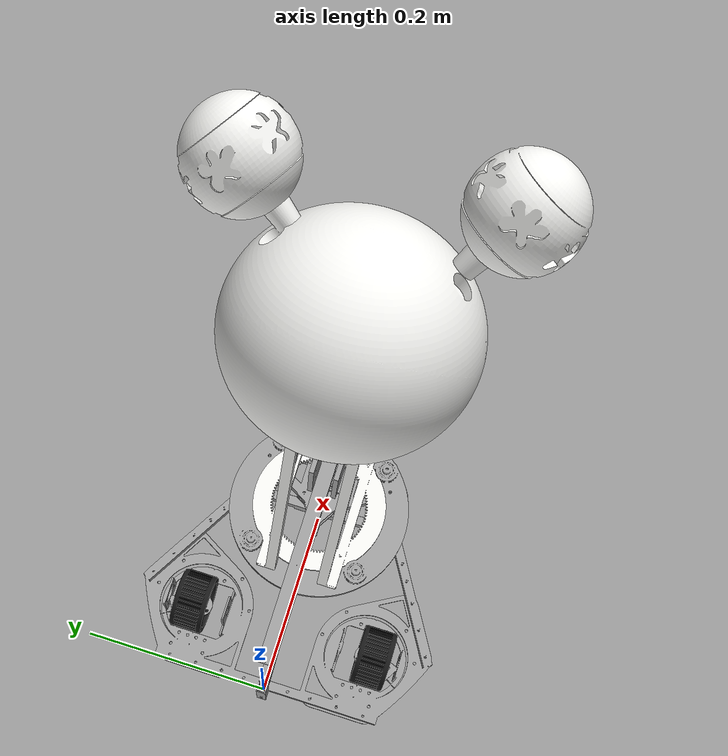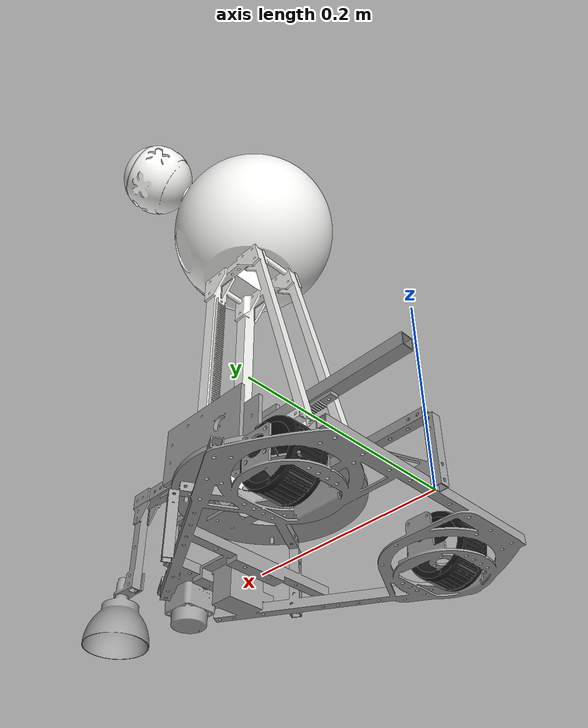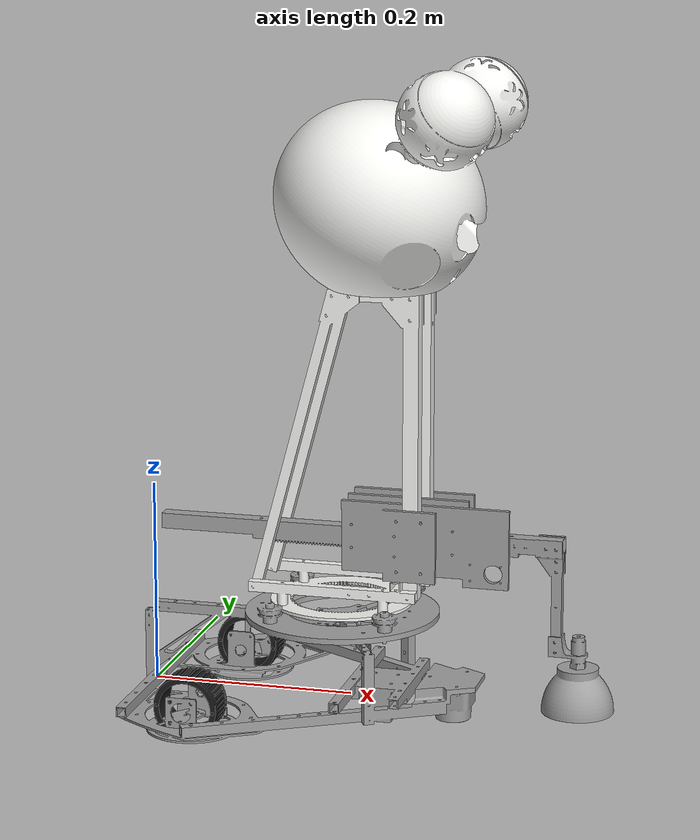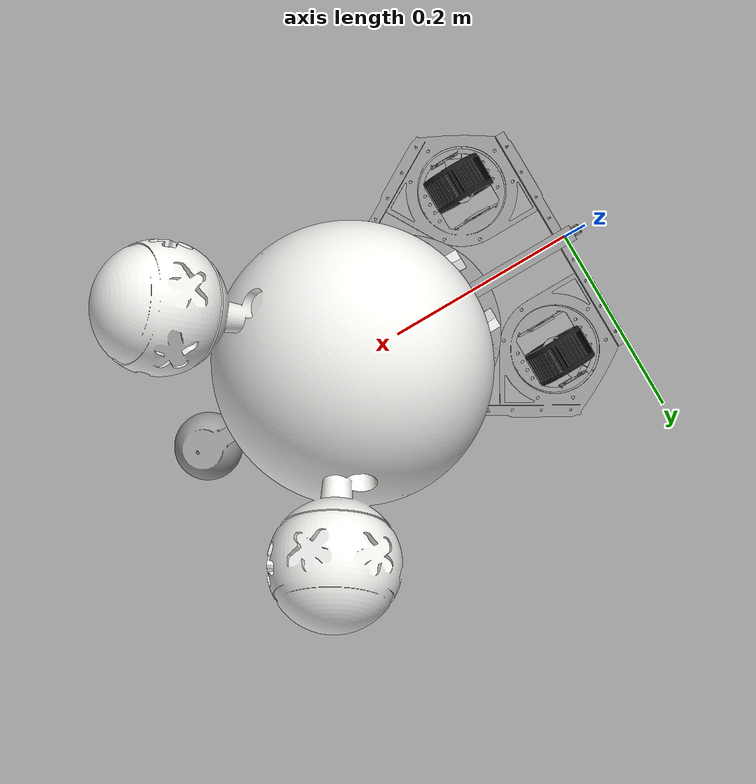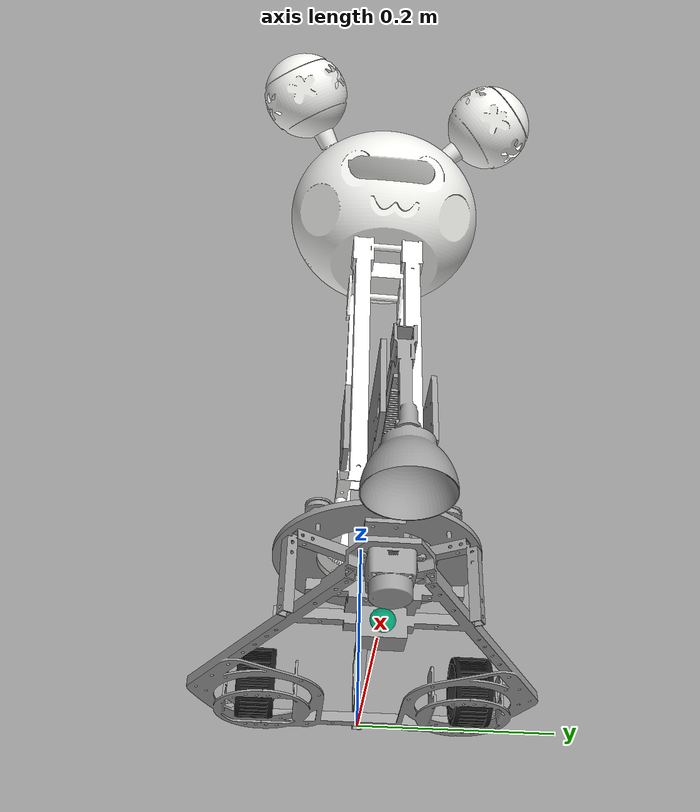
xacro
<?xml version="1.0" ?>
<robot name="utan_urdf" xmlns:xacro="http://www.ros.org/wiki/xacro">

<xacro:include filename="$(find rere_daisha_ros)/urdf/materials.xacro" />
<xacro:include filename="$(find rere_daisha_ros)/urdf/utan_urdf.trans" />

<link name="base_root"/>

<joint name="base_root_to_base_link" type="fixed">
  <origin xyz="0 0 0" rpy="0 0 0"/>
  <parent link="base_root"/>
  <child link="base_link"/>
</joint>

<link name="base_link">
  <inertial>
    <origin xyz="0.09520162806918002 0.0005187471017515448 0.01932446245336333" rpy="0 0 0"/>
    <mass value="3.65763738670461"/>
    <inertia ixx="0.033307" iyy="0.019117" izz="0.046561" ixy="0.00029" iyz="6e-06" ixz="0.000904"/>
  </inertial>
  <visual>
    <origin xyz="0 0 0" rpy="0 0 0"/>
    <geometry>
      <mesh filename="package://rere_daisha_ros/meshes/base_link_utan.stl" scale="0.001 0.001 0.001"/>
    </geometry>
    <material name="opaque160160160"/>
  </visual>
  <collision>
    <origin xyz="0 0 0" rpy="0 0 0"/>
    <geometry>
      <mesh filename="package://rere_daisha_ros/meshes/base_link_utan.stl" scale="0.001 0.001 0.001"/>
    </geometry>
  </collision>
</link>

<link name="turn_table_v2_1">
  <inertial>
    <origin xyz="0.09802654893156955 0.00016193590845080152 -0.006281031795882117" rpy="0 0 0"/>
    <mass value="0.23068331433441983"/>
    <inertia ixx="0.000458" iyy="0.000536" izz="0.000862" ixy="-1e-06" iyz="1e-06" ixz="4.8e-05"/>
  </inertial>
  <visual>
    <origin xyz="-0.11 -0.0 -0.08" rpy="0 0 0"/>
    <geometry>
      <mesh filename="package://rere_daisha_ros/meshes/turn_table_v2_1.stl" scale="0.001 0.001 0.001"/>
    </geometry>
    <material name="opaque160160160"/>
  </visual>
  <collision>
    <origin xyz="-0.11 -0.0 -0.08" rpy="0 0 0"/>
    <geometry>
      <mesh filename="package://rere_daisha_ros/meshes/turn_table_v2_1.stl" scale="0.001 0.001 0.001"/>
    </geometry>
  </collision>
</link>

<link name="arm_frame_v2_1">
  <inertial>
    <origin xyz="0.02744889021645841 0.0012818596317239104 0.15687901625587758" rpy="0 0 0"/>
    <mass value="0.2699419306159649"/>
    <inertia ixx="0.003631" iyy="0.004135" izz="0.000986" ixy="-1.3e-05" iyz="-4e-06" ixz="-0.000386"/>
  </inertial>
  <visual>
    <origin xyz="-0.19163 -0.0 -0.0855" rpy="0 0 0"/>
    <geometry>
      <mesh filename="package://rere_daisha_ros/meshes/arm_frame_v2_1.stl" scale="0.001 0.001 0.001"/>
    </geometry>
    <material name="abs"/>
  </visual>
  <collision>
    <origin xyz="-0.19163 -0.0 -0.0855" rpy="0 0 0"/>
    <geometry>
      <mesh filename="package://rere_daisha_ros/meshes/arm_frame_v2_1.stl" scale="0.001 0.001 0.001"/>
    </geometry>
  </collision>
</link>

<link name="wheel_v1_1">
  <inertial>
    <origin xyz="3.191891195797325e-16 0.017700000000000354 3.4867941867133823e-16" rpy="0 0 0"/>
    <mass value="0.28418559373662294"/>
    <inertia ixx="0.000148" iyy="0.000235" izz="0.000148" ixy="-0.0" iyz="-0.0" ixz="-0.0"/>
  </inertial>
  <visual>
    <origin xyz="-0.0675 0.12025 -0.012" rpy="0 0 0"/>
    <geometry>
      <mesh filename="package://rere_daisha_ros/meshes/wheel_v1_1.stl" scale="0.001 0.001 0.001"/>
    </geometry>
    <material name="opaque252525"/>
  </visual>
  <collision>
    <origin xyz="0 0.0177 0" rpy="1.57 0 0"/>
    <geometry>
      <cylinder radius="0.032" length="0.0354"/>
    </geometry>
  </collision>
</link>

<link name="wheel_v1_2">
  <inertial>
    <origin xyz="6.938893903907228e-17 -0.017700000000000132 1.5317608292875207e-15" rpy="0 0 0"/>
    <mass value="0.28418559373662294"/>
    <inertia ixx="0.000148" iyy="0.000235" izz="0.000148" ixy="0.0" iyz="-0.0" ixz="0.0"/>
  </inertial>
  <visual>
    <origin xyz="-0.0675 -0.12025 -0.012" rpy="0 0 0"/>
    <geometry>
      <mesh filename="package://rere_daisha_ros/meshes/wheel_v1_2.stl" scale="0.001 0.001 0.001"/>
    </geometry>
    <material name="opaque252525"/>
  </visual>
  <collision>
    <origin xyz="0 -0.0177 0" rpy="1.57 0 0"/>
    <geometry>
      <cylinder radius="0.032" length="0.0354"/>
    </geometry>
  </collision>
</link>

<link name="ldlidar_v1_1">
  <inertial>
    <origin xyz="0.023362666392759468 -7.575696337304393e-05 -0.011901663161928948" rpy="0 0 0"/>
    <mass value="0.1108077083765899"/>
    <inertia ixx="3e-05" iyy="2.9e-05" izz="3.4e-05" ixy="0.0" iyz="0.0" ixz="0.0"/>
  </inertial>
  <visual>
    <origin xyz="-0.279945 0.0 -0.019" rpy="0 0 0"/>
    <geometry>
      <mesh filename="package://rere_daisha_ros/meshes/ldlidar_v1_1.stl" scale="0.001 0.001 0.001"/>
    </geometry>
    <material name="_"/>
  </visual>
  <collision>
    <origin xyz="-0.279945 0.0 -0.019" rpy="0 0 0"/>
    <geometry>
      <mesh filename="package://rere_daisha_ros/meshes/ldlidar_v1_1.stl" scale="0.001 0.001 0.001"/>
    </geometry>
  </collision>
</link>

<link name="vertical_arm_frame_v2_1">
  <inertial>
    <origin xyz="-0.005753565521876891 -0.009271128275171311 0.051223551297241085" rpy="0 0 0"/>
    <mass value="0.5746828614494589"/>
    <inertia ixx="0.00066" iyy="0.001395" izz="0.001573" ixy="0.000288" iyz="-3.1e-05" ixz="0.000122"/>
  </inertial>
  <visual>
    <origin xyz="-0.27463 -0.0175 -0.11" rpy="0 0 0"/>
    <geometry>
      <mesh filename="package://rere_daisha_ros/meshes/vertical_arm_frame_v2_1.stl" scale="0.001 0.001 0.001"/>
    </geometry>
    <material name="_"/>
  </visual>
  <collision>
    <origin xyz="-0.27463 -0.0175 -0.11" rpy="0 0 0"/>
    <geometry>
      <mesh filename="package://rere_daisha_ros/meshes/vertical_arm_frame_v2_1.stl" scale="0.001 0.001 0.001"/>
    </geometry>
  </collision>
</link>

<link name="arm_edge_v2_1">
  <inertial>
    <origin xyz="-0.06652395631690738 0.009860556578744007 -0.07655211829948619" rpy="0 0 0"/>
    <mass value="0.12264148012210885"/>
    <inertia ixx="0.000396" iyy="0.002509" izz="0.002131" ixy="2e-06" iyz="-1e-06" ixz="0.000624"/>
  </inertial>
  <visual>
    <origin xyz="-0.35963 0.0075 -0.2" rpy="0 0 0"/>
    <geometry>
      <mesh filename="package://rere_daisha_ros/meshes/arm_edge_v2_1.stl" scale="0.001 0.001 0.001"/>
    </geometry>
    <material name="opaque160160160"/>
  </visual>
  <collision>
    <origin xyz="-0.35963 0.0075 -0.2" rpy="0 0 0"/>
    <geometry>
      <mesh filename="package://rere_daisha_ros/meshes/arm_edge_v2_1.stl" scale="0.001 0.001 0.001"/>
    </geometry>
  </collision>
</link>

<link name="utan_figure_v2_1">
  <inertial>
    <origin xyz="0.03326863178942485 -0.02596137626057443 0.0974308443997331" rpy="0 0 0"/>
    <mass value="0.3245235558924718"/>
    <inertia ixx="0.002786" iyy="0.002186" izz="0.002584" ixy="2.1e-05" iyz="1.1e-05" ixz="-0.000278"/>
  </inertial>
  <visual>
    <origin xyz="-0.23463 -0.0275 -0.41" rpy="0 0 0"/>
    <geometry>
      <mesh filename="package://rere_daisha_ros/meshes/utan_figure_v2_1.stl" scale="0.001 0.001 0.001"/>
    </geometry>
    <material name="abs"/>
  </visual>
  <collision>
    <origin xyz="-0.23463 -0.0275 -0.41" rpy="0 0 0"/>
    <geometry>
      <mesh filename="package://rere_daisha_ros/meshes/utan_figure_v2_1.stl" scale="0.001 0.001 0.001"/>
    </geometry>
  </collision>
</link>

<link name="caster_ball">
  <inertial>
    <mass value="0.05"/>
    <inertia ixx="1e-5" iyy="1e-5" izz="1e-5" ixy="0" ixz="0" iyz="0"/>
  </inertial>
  <collision>
    <origin xyz="0 0 0" rpy="0 0 0"/>
    <geometry>
      <sphere radius="0.015"/>
    </geometry>
  </collision>
  <visual>
    <origin xyz="0 0 0" rpy="0 0 0"/>
    <geometry>
      <sphere radius="0.015"/>
    </geometry>
  </visual>
</link>

<link name="lidar_link">
</link>

<joint name="rigit1" type="fixed">
  <origin xyz="0.11 0.0 0.08" rpy="0 0 0"/>
  <parent link="base_link"/>
  <child link="turn_table_v2_1"/>
</joint>

<joint name="arm_yaw" type="revolute">
  <origin xyz="0.08163 0.0 0.0055" rpy="0 0 0"/>
  <parent link="turn_table_v2_1"/>
  <child link="arm_frame_v2_1"/>
  <axis xyz="-0.0 0.0 1.0"/>
  <limit upper="0.872665" lower="-0.872665" effort="100" velocity="100"/>
</joint>

<joint name="wheel_right" type="continuous">
  <origin xyz="0.0675 -0.12025 0.012" rpy="0 0 0"/>
  <parent link="base_link"/>
  <child link="wheel_v1_1"/>
  <axis xyz="0.0 1.0 -0.0"/>
</joint>

<joint name="wheel_left" type="continuous">
  <origin xyz="0.0675 0.12025 0.012" rpy="0 0 0"/>
  <parent link="base_link"/>
  <child link="wheel_v1_2"/>
  <axis xyz="0.0 1.0 0.0"/>
</joint>

<joint name="lidar_joint" type="fixed">
  <origin xyz="0.279945 0.0 0.019" rpy="0 0 0"/>
  <parent link="base_link"/>
  <child link="ldlidar_v1_1"/>
</joint>

<joint name="arm_vertical" type="prismatic">
  <origin xyz="0.083 0.015 0.0245" rpy="0 0 0"/>
  <parent link="arm_frame_v2_1"/>
  <child link="vertical_arm_frame_v2_1"/>
  <axis xyz="0.0 -0.0 1.0"/>
  <limit upper="0.17" lower="-0.02" effort="1000" velocity="100"/>
</joint>

<joint name="arm_horizontal" type="prismatic">
  <origin xyz="0.085 -0.025 0.09" rpy="0 0 0"/>
  <parent link="vertical_arm_frame_v2_1"/>
  <child link="arm_edge_v2_1"/>
  <axis xyz="1.0 0.0 -0.0"/>
  <limit upper="0.085" lower="0.0" effort="100" velocity="100"/>
</joint>

<joint name="utan" type="fixed">
  <origin xyz="0.043 0.0275 0.3245" rpy="0 0 0"/>
  <parent link="arm_frame_v2_1"/>
  <child link="utan_figure_v2_1"/>
</joint>

<joint name="lidar_joint_true" type="fixed">
  <origin xyz="0.017 0 -0.0291" rpy="3.14159 0 0"/>
  <parent link="ldlidar_v1_1"/>
  <child link="lidar_link"/>
</joint>

<joint name="caster_ball_joint" type="fixed">
  <!-- ここは「地面に接する高さ」になるよう調整 -->
  <origin xyz="0.235484 0 -0.005" rpy="0 0 0"/>
  <parent link="base_link"/>
  <child link="caster_ball"/>
</joint>

<gazebo reference="lidar_link">
  <sensor type="gpu_lidar" name="lidar_sensor">
    <ignition_frame_id>lidar_link</ignition_frame_id>
    <topic>/ldlidar_node/scan</topic>
    <alwaysOn>1</alwaysOn>
    <visualize>true</visualize>
    <update_rate>10</update_rate>
    <ray>
      <scan>
        <horizontal>
          <samples>450</samples>
          <min_angle>-3.14</min_angle>
          <max_angle> 3.14</max_angle>
        </horizontal>
        <vertical>
          <samples>1</samples>
          <min_angle>0.0</min_angle>
          <max_angle>0.0</max_angle>
        </vertical>
      </scan>
      <range>
        <min>0.04</min>
        <max>12.0</max>
        <resolution>0.015</resolution>
      </range>
    </ray>
    <plugin filename="libignition-gazebo-sensors-system.so" name="ignition::gazebo::systems::Sensors">
        <render_engine>ogre</render_engine>
    </plugin>
  </sensor>
</gazebo>

<!-- wheel -->
<gazebo>
  <plugin filename="gz-sim-diff-drive-system"
          name="gz::sim::systems::DiffDrive">

    <left_joint>wheel_left</left_joint>
    <right_joint>wheel_right</right_joint>

    <wheel_separation>0.2405</wheel_separation>
    <wheel_radius>0.0321</wheel_radius>

    <topic>cmd_vel</topic>

    <odom_publish_frequency>50</odom_publish_frequency>
  </plugin>
  <plugin filename="libignition-gazebo-odometry-publisher-system.so"
        name="ignition::gazebo::systems::OdometryPublisher">

  <odom_frame>odom</odom_frame>
  <robot_base_frame>base_link</robot_base_frame>
  <odom_publish_frequency>10</odom_publish_frequency>
  <odom_topic>/odom</odom_topic>
  <tf_topic>/tf</tf_topic>
  <dimensions>2</dimensions>
  <gaussian_noise>0.0</gaussian_noise>
  </plugin>
</gazebo>

<!-- arm -->
<gazebo>
<plugin filename="gz-sim-joint-position-controller-system"
        name="gz::sim::systems::JointPositionController">
  <joint_name>arm_yaw</joint_name>
  <topic>/arm_yaw</topic>
  <p_gain>2</p_gain>
  <i_gain>0.1</i_gain>
  <d_gain>1</d_gain>
</plugin>
<plugin filename="gz-sim-joint-position-controller-system"
        name="gz::sim::systems::JointPositionController">
  <joint_name>arm_vertical</joint_name>
  <topic>/arm_vertical</topic>
  <p_gain>10</p_gain>
  <i_gain>0.5</i_gain>
  <d_gain>0.01</d_gain>
  <use_velocity_commands>true</use_velocity_commands>
  <cmd_max>0.5</cmd_max>
</plugin>
<plugin filename="gz-sim-joint-position-controller-system"
        name="gz::sim::systems::JointPositionController">
  <joint_name>arm_horizontal</joint_name>
  <topic>/arm_horizontal</topic>
  <p_gain>2</p_gain>
  <i_gain>0.5</i_gain>
  <d_gain>1</d_gain>
</plugin>
</gazebo>

<!-- friction -->
<gazebo reference="wheel_v1_1">
  <mu1>1.0</mu1>
  <mu2>1.0</mu2>
</gazebo>
<gazebo reference="wheel_v1_2">
  <mu1>1.0</mu1>
  <mu2>1.0</mu2>
</gazebo>
<gazebo reference="base_link">
  <mu1>1.0</mu1>
  <mu2>1.0</mu2>
</gazebo>
<gazebo reference="caster_ball">
  <mu1>0.3</mu1>
  <mu2>0.3</mu2>
</gazebo>

</robot>

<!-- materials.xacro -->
<robot name="swerve" xmlns:xacro="http://www.ros.org/wiki/xacro" >

<material name="silver_default">
  <color rgba="0.700 0.700 0.700 1.000"/>
</material>
<material name="_">
  <color rgba="0.6274509803921569 0.6274509803921569 0.6274509803921569 1.0"/>
</material>
<material name="opaque160160160">
  <color rgba="0.6274509803921569 0.6274509803921569 0.6274509803921569 1.0"/>
</material>
<material name="abs">
  <color rgba="0.9647058823529412 0.9647058823529412 0.9529411764705882 1.0"/>
</material>
<material name="opaque252525">
  <color rgba="0.09803921568627451 0.09803921568627451 0.09803921568627451 1.0"/>
</material>

</robot>
